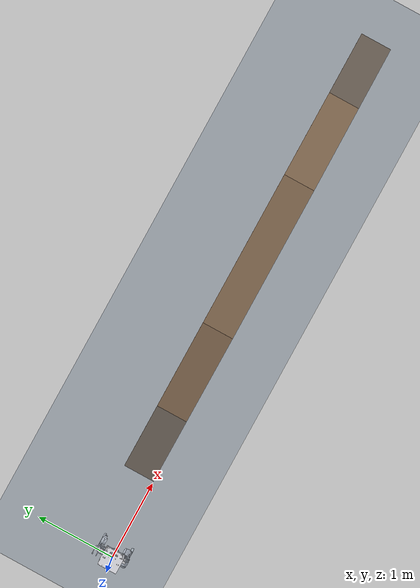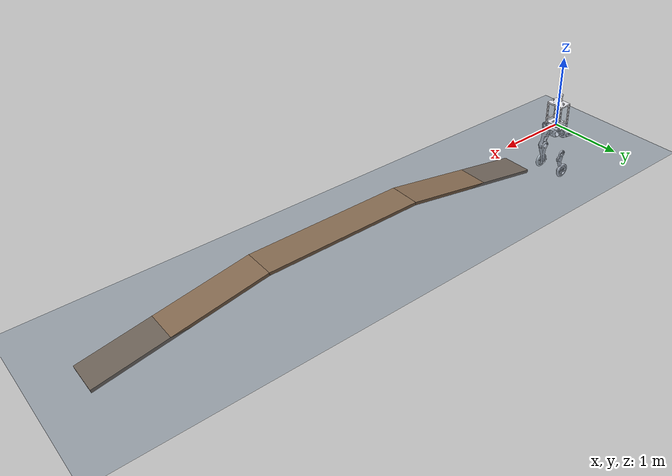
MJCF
<mujoco model="y4burdf20260114">
  <compiler angle="radian" meshdir="../meshes/"/>
<option timestep="0.005" integrator="RK4">
  </option>
  <default>
    <light castshadow="false" diffuse="1 1 1" />
    <camera fovy="60" />
    <default class="visual">
      <geom contype="0" conaffinity="0" group="1" type="mesh" rgba="0.9 0.9 0.9 1.0" />
    </default>
    <default class="collision">
      <geom contype="1" conaffinity="1" friction="1.0 0.01 0.005" rgba="0.9 0.3 0.4 0" margin="0.001" group="0" />
    </default>
    <joint damping="0.01" armature="0.01" frictionloss="0.5" />
  </default>
  <asset>
    <texture name="gridtex" type="2d" builtin="checker" width="512" height="512" rgb1="0.2 0.3 0.4" rgb2="0.3 0.4 0.5" mark="edge" markrgb="1 1 1"/>
    <material name="grid" texture="gridtex" texrepeat="4 4" reflectance="0.2"/>
    <mesh name="base_link" file="base_link.STL"/>
    <mesh name="left_hip_pitch_link" file="left_hip_pitch_link.STL"/>
    <mesh name="left_hip_roll_link" file="left_hip_roll_link.STL"/>
    <mesh name="left_knee_link" file="left_knee_link.STL"/>
    <mesh name="left_wheel_link" file="left_wheel_link.STL"/>
    <mesh name="right_hip_pitch_link" file="right_hip_pitch_link.STL"/>
    <mesh name="right_hip_roll_link" file="right_hip_roll_link.STL"/>
    <mesh name="right_knee_link" file="right_knee_link.STL"/>
    <mesh name="right_wheel_link" file="right_wheel_link.STL"/>
  </asset>

  <worldbody>
     <light pos="5 0 30" />
    <geom name="plane" type="plane" size="20 20 .01" material="grid" friction="1.0 0.02 0.01"/>
    <geom name="up_slope" type="box" size="1 0.2 0.02" pos="5.96 0.2 0" euler="0 0.1745 0" rgba="0.5 0.4 0.3 1"/>
    <geom name="flat" type="box" size="1 0.2 0.02" pos="3.98 0.2 0.173" euler="0 0 0" rgba="0.5 0.4 0.3 1"/>
    <geom name="down_slope" type="box" size="1 0.2 0.02" pos="2 0.2 0" euler="0 -0.1745 0" rgba="0.5 0.4 0.3 1"/>

    <body name="base_link">
      <inertial pos="0.0031866 0.0024622 0.077211" quat="0.999295 -0.00334779 -0.0373072 -0.00249045" mass="9.7803" diaginertia="0.184634 0.173796 0.0364601"/>
      <joint name="base_joint" type="free" limited="false" actuatorfrclimited="false"/>
      <geom type="mesh" contype="0" conaffinity="0" group="1" density="0" rgba="0.86667 0.86667 0.8902 1" mesh="base_link"/>
      <geom type="mesh" rgba="0.86667 0.86667 0.8902 1" mesh="base_link"/>
      <site name="imu" quat="1 0 0 0" />
      <body name="left_hip_pitch_link" pos="0.0055 0.05745 -0.069">
        <inertial pos="-0.0054202 0.080914 -0.00093706" quat="0.709092 0.6994 -0.0451738 0.0773804" mass="1.801" diaginertia="0.00402051 0.00309839 0.0028746"/>
        <joint name="left_hip_pitch_joint" pos="0 0 0" axis="0 1 0" range="-2.3562 3.0543" actuatorfrcrange="-90 90"/>
        <geom type="mesh" contype="0" conaffinity="0" group="1" density="0" rgba="0.86667 0.86667 0.8902 1" mesh="left_hip_pitch_link"/>
        <geom type="mesh" rgba="0.86667 0.86667 0.8902 1" mesh="left_hip_pitch_link"/>
        <body name="left_hip_roll_link" pos="0.03048 0.08605 0.0053744" quat="0.996195 0 -0.0871543 0">
          <inertial pos="-0.029905 -0.0004783 -0.20363" quat="0.704662 0.0153821 0.0183055 0.709141" mass="3.1782" diaginertia="0.0462438 0.0449155 0.00541169"/>
          <joint name="left_hip_roll_joint" pos="0 0 0" axis="1 0 0" range="-0.2618 1.7453" actuatorfrcrange="-90 90"/>
          <geom type="mesh" contype="0" conaffinity="0" group="1" density="0" rgba="0.86667 0.86667 0.8902 1" mesh="left_hip_roll_link"/>
          <geom type="mesh" rgba="0.86667 0.86667 0.8902 1" mesh="left_hip_roll_link"/>
          <body name="left_knee_link" pos="-0.03445 0.03495 -0.3" quat="0.996195 0 0.0871543 0">
            <inertial pos="-0.026177 -0.034696 -0.18407" quat="0.73463 0.0482763 0.0889522 0.670877" mass="1.5128" diaginertia="0.025466 0.0252553 0.00196625"/>
            <joint name="left_knee_joint" pos="0 0 0" axis="0 1 0" range="-0.33161 2.1991" actuatorfrcrange="-130 130"/>
            <geom type="mesh" contype="0" conaffinity="0" group="1" density="0" rgba="0.86667 0.86667 0.8902 1" mesh="left_knee_link"/>
            <geom type="mesh" rgba="0.86667 0.86667 0.8902 1" mesh="left_knee_link"/>
            <body name="left_wheel_link" pos="-0.052094 -0.01245 -0.29544">
              <inertial pos="-3.395e-05 0.024484 -1.108e-05" quat="0.691812 -0.146193 -0.146187 0.691848" mass="0.94045" diaginertia="0.0043825 0.00230215 0.00230185"/>
              <joint name="left_wheel_joint" pos="0 0 0" axis="0 1 0"/>
              <geom type="mesh" contype="0" conaffinity="0" group="1" density="0" rgba="0.86667 0.86667 0.8902 1" mesh="left_wheel_link"/>
              <geom type="mesh" rgba="0.86667 0.86667 0.8902 1" mesh="left_wheel_link"/>
            </body>
          </body>
        </body>
      </body>
      <body name="right_hip_pitch_link" pos="0.0055 -0.05745 -0.069">
        <inertial pos="-0.0054598 -0.080931 -0.00096148" quat="0.690889 0.71738 -0.0768857 0.0461247" mass="1.8053" diaginertia="0.00402881 0.00311288 0.00286901"/>
        <joint name="right_hip_pitch_joint" pos="0 0 0" axis="0 1 0" range="-2.3562 3.0543" actuatorfrcrange="-90 90"/>
        <geom type="mesh" contype="0" conaffinity="0" group="1" density="0" rgba="0.86667 0.86667 0.8902 1" mesh="right_hip_pitch_link"/>
        <geom type="mesh" rgba="0.86667 0.86667 0.8902 1" mesh="right_hip_pitch_link"/>
        <body name="right_hip_roll_link" pos="0.03048 -0.08605 0.0053744" quat="0.996195 0 -0.0871543 0">
          <inertial pos="-0.029835 0.00047888 -0.20347" quat="0.707879 0.0180644 0.0152854 0.705937" mass="3.1782" diaginertia="0.0461427 0.0448136 0.00541217"/>
          <joint name="right_hip_roll_joint" pos="0 0 0" axis="1 0 0" range="-1.7453 0.2618" actuatorfrcrange="-90 90"/>
          <geom type="mesh" contype="0" conaffinity="0" group="1" density="0" rgba="0.86667 0.86667 0.8902 1" mesh="right_hip_roll_link"/>
          <geom type="mesh" rgba="0.86667 0.86667 0.8902 1" mesh="right_hip_roll_link"/>
          <body name="right_knee_link" pos="-0.03445 -0.03495 -0.3" quat="0.996195 0 0.0871543 0">
            <inertial pos="-0.026177 0.034694 -0.18407" quat="0.670858 0.0889538 0.0482743 0.734647" mass="1.5128" diaginertia="0.025466 0.0252553 0.00196634"/>
            <joint name="right_knee_joint" pos="0 0 0" axis="0 1 0" range="-0.33161 2.1991" actuatorfrcrange="-130 130"/>
            <geom type="mesh" contype="0" conaffinity="0" group="1" density="0" rgba="0.86667 0.86667 0.8902 1" mesh="right_knee_link"/>
            <geom type="mesh" rgba="0.86667 0.86667 0.8902 1" mesh="right_knee_link"/>
            <body name="right_wheel_link" pos="-0.052094 0.01245 -0.29544">
              <inertial pos="5.78e-06 -0.024484 3.714e-05" quat="0.45822 0.538544 0.538573 0.458196" mass="0.94045" diaginertia="0.0043825 0.00230221 0.00230189"/>
              <joint name="right_wheel_joint" pos="0 0 0" axis="0 1 0"/>
              <geom type="mesh" contype="0" conaffinity="0" group="1" density="0" rgba="0.89804 0.91765 0.92941 1" mesh="right_wheel_link"/>
              <geom type="mesh" rgba="0.89804 0.91765 0.92941 1" mesh="right_wheel_link"/>
            </body>
          </body>
        </body>
      </body>
    </body>
  </worldbody>

 <actuator>
    <motor joint="left_hip_pitch_joint" name="left_hip_pitch_joint" ctrllimited="true" ctrlrange="-200 200" />
    <motor joint="left_hip_roll_joint" name="left_hip_roll_joint" ctrllimited="true" ctrlrange="-200 200" />
    <motor joint="left_knee_joint" name="left_knee_joint" ctrllimited="true" ctrlrange="-200 200" />
    <motor joint="left_wheel_joint" name="left_wheel_joint" ctrllimited="true" ctrlrange="-200 200" />
    <motor joint="right_hip_pitch_joint" name="right_hip_pitch_joint" ctrllimited="true" ctrlrange="-200 200" />
    <motor joint="right_hip_roll_joint" name="right_hip_roll_joint" ctrllimited="true" ctrlrange="-200 200" />
    <motor joint="right_knee_joint" name="right_knee_joint" ctrllimited="true" ctrlrange="-200 200" />
    <motor joint="right_wheel_joint" name="right_wheel_joint" ctrllimited="true" ctrlrange="-200 200" />
  </actuator>

   <sensor>
    <actuatorpos name="left_hip_pitch_joint_p" actuator="left_hip_pitch_joint" />
    <actuatorvel name="left_hip_pitch_joint_v" actuator="left_hip_pitch_joint" />
    <actuatorfrc name="left_hip_pitch_joint_f" actuator="left_hip_pitch_joint" noise="0.001" />
    <actuatorpos name="left_hip_roll_joint_p" actuator="left_hip_roll_joint" />
    <actuatorvel name="left_hip_roll_joint_v" actuator="left_hip_roll_joint" />
    <actuatorfrc name="left_hip_roll_joint_f" actuator="left_hip_roll_joint" noise="0.001" />
    <actuatorpos name="left_knee_joint_p" actuator="left_knee_joint" />
    <actuatorvel name="left_knee_joint_v" actuator="left_knee_joint" />
    <actuatorfrc name="left_knee_joint_f" actuator="left_knee_joint" noise="0.001" />
    <actuatorpos name="left_wheel_joint_p" actuator="left_wheel_joint" />
    <actuatorvel name="left_wheel_joint_v" actuator="left_wheel_joint" />
    <actuatorfrc name="left_wheel_joint_f" actuator="left_wheel_joint" noise="0.001" />

    <actuatorpos name="right_hip_pitch_joint_p" actuator="right_hip_pitch_joint" />
    <actuatorvel name="right_hip_pitch_joint_v" actuator="right_hip_pitch_joint" />
    <actuatorfrc name="right_hip_pitch_joint_f" actuator="right_hip_pitch_joint" noise="0.001" />
    <actuatorpos name="right_hip_roll_joint_p" actuator="right_hip_roll_joint" />
    <actuatorvel name="right_hip_roll_joint_v" actuator="right_hip_roll_joint" />
    <actuatorfrc name="right_hip_roll_joint_f" actuator="right_hip_roll_joint" noise="0.001" />
    <actuatorpos name="right_knee_joint_p" actuator="right_knee_joint" />
    <actuatorvel name="right_knee_joint_v" actuator="right_knee_joint" />
    <actuatorfrc name="right_knee_joint_f" actuator="right_knee_joint" noise="0.001" />
    <actuatorpos name="right_wheel_joint_p" actuator="right_wheel_joint" />
    <actuatorvel name="right_wheel_joint_v" actuator="right_wheel_joint" />
    <actuatorfrc name="right_wheel_joint_f" actuator="right_wheel_joint" noise="0.001" />

    <framequat name='orientation' objtype='site' noise='0.001' objname='imu'/>
    <framepos name='position' objtype='site' noise='0.001' objname='imu'/>
    <gyro name='angular-velocity' site='imu' noise='0.005' cutoff='34.9'/>
    <velocimeter name='linear-velocity' site='imu' noise='0.001' cutoff='30'/>
    <accelerometer name='linear-acceleration' site='imu' noise='0.005' cutoff='157'/>
    <magnetometer name='magnetometer' site='imu'/>
  </sensor>

  <keyframe>
    <!--两轮平衡-->
    <key time="0" qpos="0 0 0.67 1 0 0 0
    -0.523599 0 0.833691 0
    -0.523599 0 0.833691 0" />
    <!--蹲姿起立-->
  </keyframe>

</mujoco>
